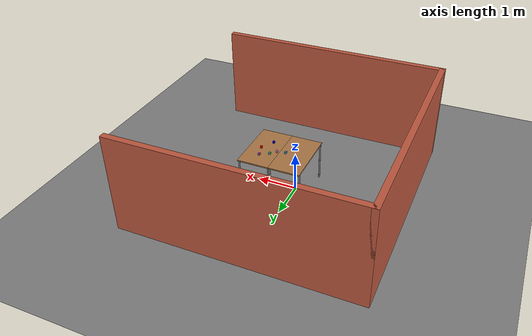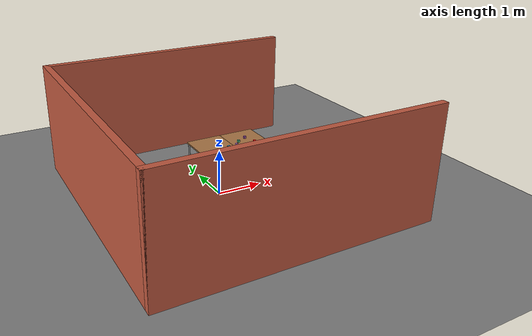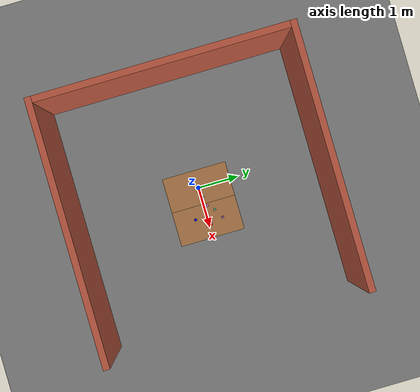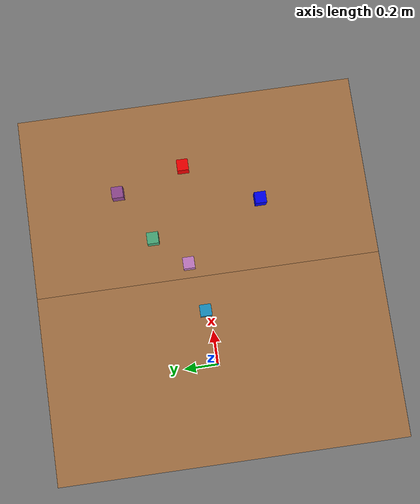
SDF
<?xml version="1.0" ?>
<sdf version="1.7">
  <world name="default">
    <!-- 环境光 / 太阳 -->
    <light name="sun" type="directional">
      <cast_shadows>true</cast_shadows>
      <pose>0 0 10 0 0 0</pose>
      <diffuse>0.8 0.8 0.8 1</diffuse>
      <specular>0.2 0.2 0.2 1</specular>
      <direction>-0.5 0.1 -0.9</direction>
    </light>

    <!-- 地面 -->
    <model name="ground_plane">
      <static>true</static>
      <link name="link">
        <collision name="collision">
          <geometry>
            <plane>
              <normal>0 0 1</normal>
              <size>100 100</size>
            </plane>
          </geometry>
          <surface>
            <friction>
              <ode>
                <mu>100</mu>
                <mu2>50</mu2>
              </ode>
            </friction>
          </surface>
        </collision>
        <visual name="visual">
          <cast_shadows>false</cast_shadows>
          <geometry>
            <plane>
              <normal>0 0 1</normal>
              <size>100 100</size>
            </plane>
          </geometry>
          <material>
            <ambient>0.5 0.5 0.5 1</ambient>
            <diffuse>0.5 0.5 0.5 1</diffuse>
            <specular>0.1 0.1 0.1 1</specular>
          </material>
        </visual>
      </link>
    </model>

    <gravity>0 0 -9.8</gravity>
    <magnetic_field>6e-06 2.3e-05 -4.2e-05</magnetic_field>
    <atmosphere type="adiabatic"/>
    <physics name="1ms" type="ignored">
      <max_step_size>0.001</max_step_size>
      <real_time_factor>1.0</real_time_factor>
    </physics>
    <scene>
      <ambient>0.4 0.4 0.4 1</ambient>
      <background>0.7 0.7 0.7 1</background>
      <shadows>true</shadows>
    </scene>

    <!-- 桌子 1 -->
    <model name="table">
      <static>true</static>
      <pose>0 0 0 0 0 1.5708</pose>
      <link name="link">
        <collision name="surface">
          <pose>0 0 1 0 0 0</pose>
          <geometry>
            <box>
              <size>1.5 0.8 0.03</size>
            </box>
          </geometry>
          <surface>
            <friction>
              <ode>
                <mu>0.6</mu>
                <mu2>0.6</mu2>
              </ode>
            </friction>
          </surface>
        </collision>
        <visual name="visual1">
          <pose>0 0 1 0 0 0</pose>
          <geometry>
            <box>
              <size>1.5 0.8 0.03</size>
            </box>
          </geometry>
          <material>
            <ambient>0.68 0.47 0.28 1</ambient>
            <diffuse>0.68 0.47 0.28 1</diffuse>
            <specular>0.1 0.1 0.1 1</specular>
          </material>
        </visual>
        <collision name="front_left_leg">
          <pose>0.68 0.38 0.5 0 0 0</pose>
          <geometry>
            <cylinder>
              <radius>0.02</radius>
              <length>1</length>
            </cylinder>
          </geometry>
        </collision>
        <visual name="front_left_leg">
          <pose>0.68 0.38 0.5 0 0 0</pose>
          <geometry>
            <cylinder>
              <radius>0.02</radius>
              <length>1</length>
            </cylinder>
          </geometry>
          <material>
            <ambient>0.5 0.5 0.5 1</ambient>
            <diffuse>0.5 0.5 0.5 1</diffuse>
            <specular>0.1 0.1 0.1 1</specular>
          </material>
        </visual>
        <collision name="front_right_leg">
          <pose>0.68 -0.38 0.5 0 0 0</pose>
          <geometry>
            <cylinder>
              <radius>0.02</radius>
              <length>1</length>
            </cylinder>
          </geometry>
        </collision>
        <visual name="front_right_leg">
          <pose>0.68 -0.38 0.5 0 0 0</pose>
          <geometry>
            <cylinder>
              <radius>0.02</radius>
              <length>1</length>
            </cylinder>
          </geometry>
          <material>
            <ambient>0.5 0.5 0.5 1</ambient>
            <diffuse>0.5 0.5 0.5 1</diffuse>
            <specular>0.1 0.1 0.1 1</specular>
          </material>
        </visual>
        <collision name="back_right_leg">
          <pose>-0.68 -0.38 0.5 0 0 0</pose>
          <geometry>
            <cylinder>
              <radius>0.02</radius>
              <length>1</length>
            </cylinder>
          </geometry>
        </collision>
        <visual name="back_right_leg">
          <pose>-0.68 -0.38 0.5 0 0 0</pose>
          <geometry>
            <cylinder>
              <radius>0.02</radius>
              <length>1</length>
            </cylinder>
          </geometry>
          <material>
            <ambient>0.5 0.5 0.5 1</ambient>
            <diffuse>0.5 0.5 0.5 1</diffuse>
            <specular>0.1 0.1 0.1 1</specular>
          </material>
        </visual>
        <collision name="back_left_leg">
          <pose>-0.68 0.38 0.5 0 0 0</pose>
          <geometry>
            <cylinder>
              <radius>0.02</radius>
              <length>1</length>
            </cylinder>
          </geometry>
        </collision>
        <visual name="back_left_leg">
          <pose>-0.68 0.38 0.5 0 0 0</pose>
          <geometry>
            <cylinder>
              <radius>0.02</radius>
              <length>1</length>
            </cylinder>
          </geometry>
          <material>
            <ambient>0.5 0.5 0.5 1</ambient>
            <diffuse>0.5 0.5 0.5 1</diffuse>
            <specular>0.1 0.1 0.1 1</specular>
          </material>
        </visual>
      </link>
    </model>

    <!-- 桌子 2 -->
    <model name="table_0">
      <static>true</static>
      <pose>0.8 0 0 0 0 1.5708</pose>
      <link name="link">
        <collision name="surface">
          <pose>0 0 1 0 0 0</pose>
          <geometry>
            <box>
              <size>1.5 0.8 0.03</size>
            </box>
          </geometry>
          <surface>
            <friction>
              <ode>
                <mu>0.6</mu>
                <mu2>0.6</mu2>
              </ode>
            </friction>
          </surface>
        </collision>
        <visual name="visual1">
          <pose>0 0 1 0 0 0</pose>
          <geometry>
            <box>
              <size>1.5 0.8 0.03</size>
            </box>
          </geometry>
          <material>
            <ambient>0.68 0.47 0.28 1</ambient>
            <diffuse>0.68 0.47 0.28 1</diffuse>
            <specular>0.1 0.1 0.1 1</specular>
          </material>
        </visual>
        <collision name="front_left_leg">
          <pose>0.68 0.38 0.5 0 0 0</pose>
          <geometry>
            <cylinder>
              <radius>0.02</radius>
              <length>1</length>
            </cylinder>
          </geometry>
        </collision>
        <visual name="front_left_leg">
          <pose>0.68 0.38 0.5 0 0 0</pose>
          <geometry>
            <cylinder>
              <radius>0.02</radius>
              <length>1</length>
            </cylinder>
          </geometry>
          <material>
            <ambient>0.5 0.5 0.5 1</ambient>
            <diffuse>0.5 0.5 0.5 1</diffuse>
            <specular>0.1 0.1 0.1 1</specular>
          </material>
        </visual>
        <collision name="front_right_leg">
          <pose>0.68 -0.38 0.5 0 0 0</pose>
          <geometry>
            <cylinder>
              <radius>0.02</radius>
              <length>1</length>
            </cylinder>
          </geometry>
        </collision>
        <visual name="front_right_leg">
          <pose>0.68 -0.38 0.5 0 0 0</pose>
          <geometry>
            <cylinder>
              <radius>0.02</radius>
              <length>1</length>
            </cylinder>
          </geometry>
          <material>
            <ambient>0.5 0.5 0.5 1</ambient>
            <diffuse>0.5 0.5 0.5 1</diffuse>
            <specular>0.1 0.1 0.1 1</specular>
          </material>
        </visual>
        <collision name="back_right_leg">
          <pose>-0.68 -0.38 0.5 0 0 0</pose>
          <geometry>
            <cylinder>
              <radius>0.02</radius>
              <length>1</length>
            </cylinder>
          </geometry>
        </collision>
        <visual name="back_right_leg">
          <pose>-0.68 -0.38 0.5 0 0 0</pose>
          <geometry>
            <cylinder>
              <radius>0.02</radius>
              <length>1</length>
            </cylinder>
          </geometry>
          <material>
            <ambient>0.5 0.5 0.5 1</ambient>
            <diffuse>0.5 0.5 0.5 1</diffuse>
            <specular>0.1 0.1 0.1 1</specular>
          </material>
        </visual>
        <collision name="back_left_leg">
          <pose>-0.68 0.38 0.5 0 0 0</pose>
          <geometry>
            <cylinder>
              <radius>0.02</radius>
              <length>1</length>
            </cylinder>
          </geometry>
        </collision>
        <visual name="back_left_leg">
          <pose>-0.68 0.38 0.5 0 0 0</pose>
          <geometry>
            <cylinder>
              <radius>0.02</radius>
              <length>1</length>
            </cylinder>
          </geometry>
          <material>
            <ambient>0.5 0.5 0.5 1</ambient>
            <diffuse>0.5 0.5 0.5 1</diffuse>
            <specular>0.1 0.1 0.1 1</specular>
          </material>
        </visual>
      </link>
    </model>

    <!-- 围墙 -->
    <model name="building">
      <static>true</static>
      <pose>0.172106 -0.015842 0 0 0 0</pose>
      <link name="Wall_14">
        <pose>0 2.925 0 0 0 0</pose>
        <collision name="Wall_14_Collision">
          <pose>0 0 1.25 0 0 0</pose>
          <geometry>
            <box>
              <size>6 0.15 2.5</size>
            </box>
          </geometry>
        </collision>
        <visual name="Wall_14_Visual">
          <pose>0 0 1.25 0 0 0</pose>
          <geometry>
            <box>
              <size>6 0.15 2.5</size>
            </box>
          </geometry>
          <material>
            <ambient>0.75 0.35 0.25 1</ambient>
            <diffuse>0.75 0.35 0.25 1</diffuse>
            <specular>0.1 0.1 0.1 1</specular>
          </material>
        </visual>
      </link>
      <link name="Wall_16">
        <pose>0 -2.925 0 0 0 0</pose>
        <collision name="Wall_16_Collision">
          <pose>0 0 1.25 0 0 0</pose>
          <geometry>
            <box>
              <size>6 0.15 2.5</size>
            </box>
          </geometry>
        </collision>
        <visual name="Wall_16_Visual">
          <pose>0 0 1.25 0 0 0</pose>
          <geometry>
            <box>
              <size>6 0.15 2.5</size>
            </box>
          </geometry>
          <material>
            <ambient>0.75 0.35 0.25 1</ambient>
            <diffuse>0.75 0.35 0.25 1</diffuse>
            <specular>0.1 0.1 0.1 1</specular>
          </material>
        </visual>
      </link>
      <link name="Wall_9">
        <pose>-2.925 0 0 0 0 1.5708</pose>
        <collision name="Wall_9_Collision">
          <pose>0 0 1.25 0 0 0</pose>
          <geometry>
            <box>
              <size>6 0.15 2.5</size>
            </box>
          </geometry>
        </collision>
        <visual name="Wall_9_Visual">
          <pose>0 0 1.25 0 0 0</pose>
          <geometry>
            <box>
              <size>6 0.15 2.5</size>
            </box>
          </geometry>
          <material>
            <ambient>0.75 0.35 0.25 1</ambient>
            <diffuse>0.75 0.35 0.25 1</diffuse>
            <specular>0.1 0.1 0.1 1</specular>
          </material>
        </visual>
      </link>
    </model>

    <!-- 蓝色方块 -->
    <model name="blue_box">
      <pose>0.7 -0.27 1.04 0 0 0</pose>
      <link name="link">
        <inertial>
          <mass>1</mass>
          <inertia>
            <ixx>0.166667</ixx>
            <ixy>0</ixy>
            <ixz>0</ixz>
            <iyy>0.166667</iyy>
            <iyz>0</iyz>
            <izz>0.166667</izz>
          </inertia>
        </inertial>
        <collision name="collision">
          <geometry>
            <box>
              <size>0.05 0.05 0.05</size>
            </box>
          </geometry>
        </collision>
        <visual name="visual">
          <geometry>
            <box>
              <size>0.05 0.05 0.05</size>
            </box>
          </geometry>
          <material>
            <ambient>0 0 1 1</ambient>
            <diffuse>0 0 1 1</diffuse>
            <specular>0.1 0.1 0.1 1</specular>
          </material>
        </visual>
      </link>
    </model>

    <!-- 红色长方块 -->
    <model name="red_box">
      <pose>0.890859 0.045768 1.04 0 0 0</pose>
      <link name="link">
        <inertial>
          <mass>1</mass>
          <inertia>
            <ixx>0.166667</ixx>
            <ixy>0</ixy>
            <ixz>0</ixz>
            <iyy>0.166667</iyy>
            <iyz>0</iyz>
            <izz>0.166667</izz>
          </inertia>
        </inertial>
        <collision name="collision">
          <geometry>
            <box>
              <size>0.05 0.05 0.05</size>
            </box>
          </geometry>
        </collision>
        <visual name="visual">
          <geometry>
            <box>
              <size>0.05 0.05 0.05</size>
            </box>
          </geometry>
          <material>
            <ambient>1 0 0 1</ambient>
            <diffuse>1 0 0 1</diffuse>
            <specular>0.1 0.1 0.1 1</specular>
          </material>
        </visual>
      </link>
    </model>

    <!-- 紫色方块 -->
    <model name="box_1">
      <pose>0.809111 0.342838 1.04 0 0 0</pose>
      <link name="link">
        <inertial>
          <mass>1</mass>
          <inertia>
            <ixx>0.166667</ixx>
            <ixy>0</ixy>
            <ixz>0</ixz>
            <iyy>0.166667</iyy>
            <iyz>0</iyz>
            <izz>0.166667</izz>
          </inertia>
        </inertial>
        <collision name="collision">
          <geometry>
            <box>
              <size>0.05 0.05 0.05</size>
            </box>
          </geometry>
        </collision>
        <visual name="visual">
          <geometry>
            <box>
              <size>0.05 0.05 0.05</size>
            </box>
          </geometry>
          <material>
            <ambient>0.6 0.3 0.6 1</ambient>
            <diffuse>0.6 0.3 0.6 1</diffuse>
            <specular>0.1 0.1 0.1 1</specular>
          </material>
        </visual>
      </link>
    </model>

    <!-- 绿色方块 -->
    <model name="box_2">
      <pose>0.588575 0.216753 1.04 0 0 0</pose>
      <link name="link">
        <inertial>
          <mass>1</mass>
          <inertia>
            <ixx>0.166667</ixx>
            <ixy>0</ixy>
            <ixz>0</ixz>
            <iyy>0.166667</iyy>
            <iyz>0</iyz>
            <izz>0.166667</izz>
          </inertia>
        </inertial>
        <collision name="collision">
          <geometry>
            <box>
              <size>0.05 0.05 0.05</size>
            </box>
          </geometry>
        </collision>
        <visual name="visual">
          <geometry>
            <box>
              <size>0.05 0.05 0.05</size>
            </box>
          </geometry>
          <material>
            <ambient>0.3 0.7 0.5 1</ambient>
            <diffuse>0.3 0.7 0.5 1</diffuse>
            <specular>0.1 0.1 0.1 1</specular>
          </material>
        </visual>
      </link>
    </model>

    <!-- 蓝绿色方块 -->
    <model name="box_3">
      <pose>0.24792 0.034045 1.04 0 0 0</pose>
      <link name="link">
        <inertial>
          <mass>1</mass>
          <inertia>
            <ixx>0.166667</ixx>
            <ixy>0</ixy>
            <ixz>0</ixz>
            <iyy>0.166667</iyy>
            <iyz>0</iyz>
            <izz>0.166667</izz>
          </inertia>
        </inertial>
        <collision name="collision">
          <geometry>
            <box>
              <size>0.05 0.05 0.05</size>
            </box>
          </geometry>
        </collision>
        <visual name="visual">
          <geometry>
            <box>
              <size>0.05 0.05 0.05</size>
            </box>
          </geometry>
          <material>
            <ambient>0.1 0.6 0.8 1</ambient>
            <diffuse>0.1 0.6 0.8 1</diffuse>
            <specular>0.1 0.1 0.1 1</specular>
          </material>
        </visual>
      </link>
    </model>

    <!-- 粉紫色方块 -->
    <model name="box_4">
      <pose>0.459899 0.077385 1.04 0 0 0</pose>
      <link name="link">
        <inertial>
          <mass>1</mass>
          <inertia>
            <ixx>0.166667</ixx>
            <ixy>0</ixy>
            <ixz>0</ixz>
            <iyy>0.166667</iyy>
            <iyz>0</iyz>
            <izz>0.166667</izz>
          </inertia>
        </inertial>
        <collision name="collision">
          <geometry>
            <box>
              <size>0.05 0.05 0.05</size>
            </box>
          </geometry>
        </collision>
        <visual name="visual">
          <geometry>
            <box>
              <size>0.05 0.05 0.05</size>
            </box>
          </geometry>
          <material>
            <ambient>0.8 0.5 0.8 1</ambient>
            <diffuse>0.8 0.5 0.8 1</diffuse>
            <specular>0.1 0.1 0.1 1</specular>
          </material>
        </visual>
      </link>
    </model>
  </world>
</sdf>
